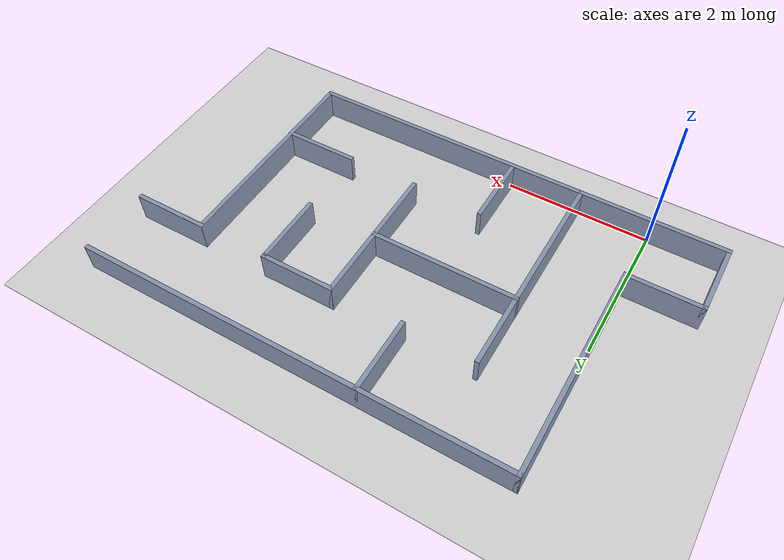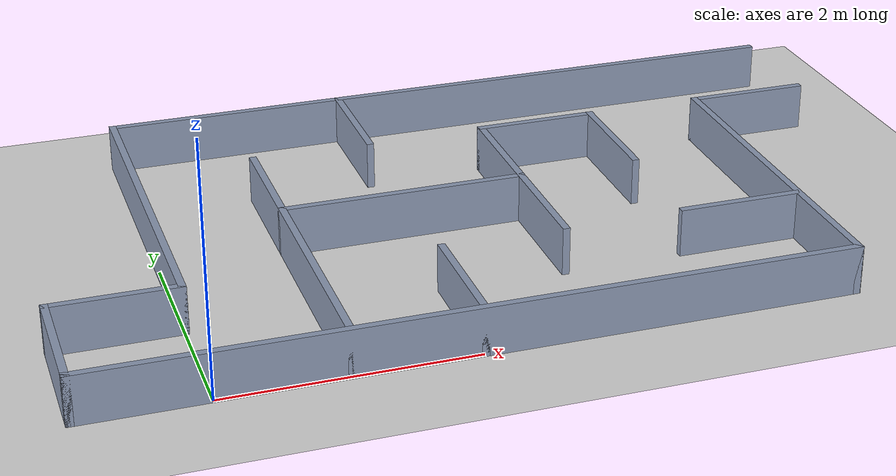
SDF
<?xml version="1.0"?>
<sdf version="1.8">
  <world name="default">
    <plugin filename="gz-sim-physics-system" name="gz::sim::systems::Physics"/>
    <plugin filename="gz-sim-user-commands-system" name="gz::sim::systems::UserCommands"/>
    <plugin filename="gz-sim-scene-broadcaster-system" name="gz::sim::systems::SceneBroadcaster"/>
    <plugin filename="gz-sim-sensors-system" name="gz::sim::systems::Sensors">
      <render_engine>ogre2</render_engine>
    </plugin>
    <plugin filename="gz-sim-imu-system" name="gz::sim::systems::Imu"/>

    <physics name="1ms" type="ignored">
      <max_step_size>0.001</max_step_size>
      <real_time_factor>1.0</real_time_factor>
    </physics>

    <scene>
      <ambient>0.6 0.6 0.6 1</ambient>
      <background>0.8 0.85 0.9 1</background>
      <shadows>false</shadows>
    </scene>

    <light type="directional" name="sun">
      <cast_shadows>false</cast_shadows>
      <pose>0 0 10 0 0 0</pose>
      <diffuse>0.9 0.9 0.9 1</diffuse>
      <specular>0.2 0.2 0.2 1</specular>
      <direction>-0.4 0.2 -0.9</direction>
    </light>

    <model name="ground_plane">
      <static>true</static>
      <link name="link">
        <collision name="collision">
          <geometry><plane><normal>0 0 1</normal><size>40 40</size></plane></geometry>
        </collision>
        <visual name="visual">
          <geometry><plane><normal>0 0 1</normal><size>40 40</size></plane></geometry>
          <material>
            <ambient>0.85 0.85 0.85 1</ambient>
            <diffuse>0.85 0.85 0.85 1</diffuse>
          </material>
        </visual>
      </link>
    </model>

    <model name="wall_00">
      <static>true</static>
      <pose>2.000 0.000 0.200 0 0 0.0</pose>
      <link name="link">
        <collision name="collision">
          <geometry><box><size>6.060 0.060 0.400</size></box></geometry>
        </collision>
        <visual name="visual">
          <geometry><box><size>6.060 0.060 0.400</size></box></geometry>
          <material>
            <ambient>0.55 0.6 0.7 1</ambient>
            <diffuse>0.55 0.6 0.7 1</diffuse>
          </material>
        </visual>
      </link>
    </model>
    <model name="wall_01">
      <static>true</static>
      <pose>-0.500 1.000 0.200 0 0 0.0</pose>
      <link name="link">
        <collision name="collision">
          <geometry><box><size>1.060 0.060 0.400</size></box></geometry>
        </collision>
        <visual name="visual">
          <geometry><box><size>1.060 0.060 0.400</size></box></geometry>
          <material>
            <ambient>0.55 0.6 0.7 1</ambient>
            <diffuse>0.55 0.6 0.7 1</diffuse>
          </material>
        </visual>
      </link>
    </model>
    <model name="wall_02">
      <static>true</static>
      <pose>4.500 1.000 0.200 0 0 0.0</pose>
      <link name="link">
        <collision name="collision">
          <geometry><box><size>1.060 0.060 0.400</size></box></geometry>
        </collision>
        <visual name="visual">
          <geometry><box><size>1.060 0.060 0.400</size></box></geometry>
          <material>
            <ambient>0.55 0.6 0.7 1</ambient>
            <diffuse>0.55 0.6 0.7 1</diffuse>
          </material>
        </visual>
      </link>
    </model>
    <model name="wall_03">
      <static>true</static>
      <pose>2.000 2.000 0.200 0 0 0.0</pose>
      <link name="link">
        <collision name="collision">
          <geometry><box><size>2.060 0.060 0.400</size></box></geometry>
        </collision>
        <visual name="visual">
          <geometry><box><size>2.060 0.060 0.400</size></box></geometry>
          <material>
            <ambient>0.55 0.6 0.7 1</ambient>
            <diffuse>0.55 0.6 0.7 1</diffuse>
          </material>
        </visual>
      </link>
    </model>
    <model name="wall_04">
      <static>true</static>
      <pose>3.500 3.000 0.200 0 0 0.0</pose>
      <link name="link">
        <collision name="collision">
          <geometry><box><size>1.060 0.060 0.400</size></box></geometry>
        </collision>
        <visual name="visual">
          <geometry><box><size>1.060 0.060 0.400</size></box></geometry>
          <material>
            <ambient>0.55 0.6 0.7 1</ambient>
            <diffuse>0.55 0.6 0.7 1</diffuse>
          </material>
        </visual>
      </link>
    </model>
    <model name="wall_05">
      <static>true</static>
      <pose>5.500 3.000 0.200 0 0 0.0</pose>
      <link name="link">
        <collision name="collision">
          <geometry><box><size>1.060 0.060 0.400</size></box></geometry>
        </collision>
        <visual name="visual">
          <geometry><box><size>1.060 0.060 0.400</size></box></geometry>
          <material>
            <ambient>0.55 0.6 0.7 1</ambient>
            <diffuse>0.55 0.6 0.7 1</diffuse>
          </material>
        </visual>
      </link>
    </model>
    <model name="wall_06">
      <static>true</static>
      <pose>3.000 4.000 0.200 0 0 0.0</pose>
      <link name="link">
        <collision name="collision">
          <geometry><box><size>6.060 0.060 0.400</size></box></geometry>
        </collision>
        <visual name="visual">
          <geometry><box><size>6.060 0.060 0.400</size></box></geometry>
          <material>
            <ambient>0.55 0.6 0.7 1</ambient>
            <diffuse>0.55 0.6 0.7 1</diffuse>
          </material>
        </visual>
      </link>
    </model>
    <model name="wall_07">
      <static>true</static>
      <pose>-1.000 0.500 0.200 0 0 1.5707963</pose>
      <link name="link">
        <collision name="collision">
          <geometry><box><size>1.060 0.060 0.400</size></box></geometry>
        </collision>
        <visual name="visual">
          <geometry><box><size>1.060 0.060 0.400</size></box></geometry>
          <material>
            <ambient>0.55 0.6 0.7 1</ambient>
            <diffuse>0.55 0.6 0.7 1</diffuse>
          </material>
        </visual>
      </link>
    </model>
    <model name="wall_08">
      <static>true</static>
      <pose>0.000 2.500 0.200 0 0 1.5707963</pose>
      <link name="link">
        <collision name="collision">
          <geometry><box><size>3.060 0.060 0.400</size></box></geometry>
        </collision>
        <visual name="visual">
          <geometry><box><size>3.060 0.060 0.400</size></box></geometry>
          <material>
            <ambient>0.55 0.6 0.7 1</ambient>
            <diffuse>0.55 0.6 0.7 1</diffuse>
          </material>
        </visual>
      </link>
    </model>
    <model name="wall_09">
      <static>true</static>
      <pose>1.000 1.500 0.200 0 0 1.5707963</pose>
      <link name="link">
        <collision name="collision">
          <geometry><box><size>3.060 0.060 0.400</size></box></geometry>
        </collision>
        <visual name="visual">
          <geometry><box><size>3.060 0.060 0.400</size></box></geometry>
          <material>
            <ambient>0.55 0.6 0.7 1</ambient>
            <diffuse>0.55 0.6 0.7 1</diffuse>
          </material>
        </visual>
      </link>
    </model>
    <model name="wall_10">
      <static>true</static>
      <pose>2.000 0.500 0.200 0 0 1.5707963</pose>
      <link name="link">
        <collision name="collision">
          <geometry><box><size>1.060 0.060 0.400</size></box></geometry>
        </collision>
        <visual name="visual">
          <geometry><box><size>1.060 0.060 0.400</size></box></geometry>
          <material>
            <ambient>0.55 0.6 0.7 1</ambient>
            <diffuse>0.55 0.6 0.7 1</diffuse>
          </material>
        </visual>
      </link>
    </model>
    <model name="wall_11">
      <static>true</static>
      <pose>2.000 3.500 0.200 0 0 1.5707963</pose>
      <link name="link">
        <collision name="collision">
          <geometry><box><size>1.060 0.060 0.400</size></box></geometry>
        </collision>
        <visual name="visual">
          <geometry><box><size>1.060 0.060 0.400</size></box></geometry>
          <material>
            <ambient>0.55 0.6 0.7 1</ambient>
            <diffuse>0.55 0.6 0.7 1</diffuse>
          </material>
        </visual>
      </link>
    </model>
    <model name="wall_12">
      <static>true</static>
      <pose>3.000 2.000 0.200 0 0 1.5707963</pose>
      <link name="link">
        <collision name="collision">
          <geometry><box><size>2.060 0.060 0.400</size></box></geometry>
        </collision>
        <visual name="visual">
          <geometry><box><size>2.060 0.060 0.400</size></box></geometry>
          <material>
            <ambient>0.55 0.6 0.7 1</ambient>
            <diffuse>0.55 0.6 0.7 1</diffuse>
          </material>
        </visual>
      </link>
    </model>
    <model name="wall_13">
      <static>true</static>
      <pose>4.000 2.500 0.200 0 0 1.5707963</pose>
      <link name="link">
        <collision name="collision">
          <geometry><box><size>1.060 0.060 0.400</size></box></geometry>
        </collision>
        <visual name="visual">
          <geometry><box><size>1.060 0.060 0.400</size></box></geometry>
          <material>
            <ambient>0.55 0.6 0.7 1</ambient>
            <diffuse>0.55 0.6 0.7 1</diffuse>
          </material>
        </visual>
      </link>
    </model>
    <model name="wall_14">
      <static>true</static>
      <pose>5.000 1.500 0.200 0 0 1.5707963</pose>
      <link name="link">
        <collision name="collision">
          <geometry><box><size>3.060 0.060 0.400</size></box></geometry>
        </collision>
        <visual name="visual">
          <geometry><box><size>3.060 0.060 0.400</size></box></geometry>
          <material>
            <ambient>0.55 0.6 0.7 1</ambient>
            <diffuse>0.55 0.6 0.7 1</diffuse>
          </material>
        </visual>
      </link>
    </model>
  </world>
</sdf>
